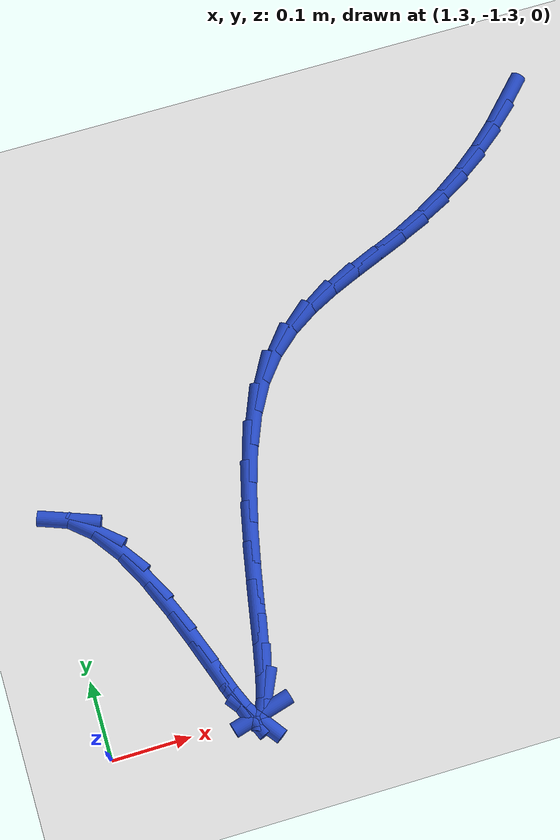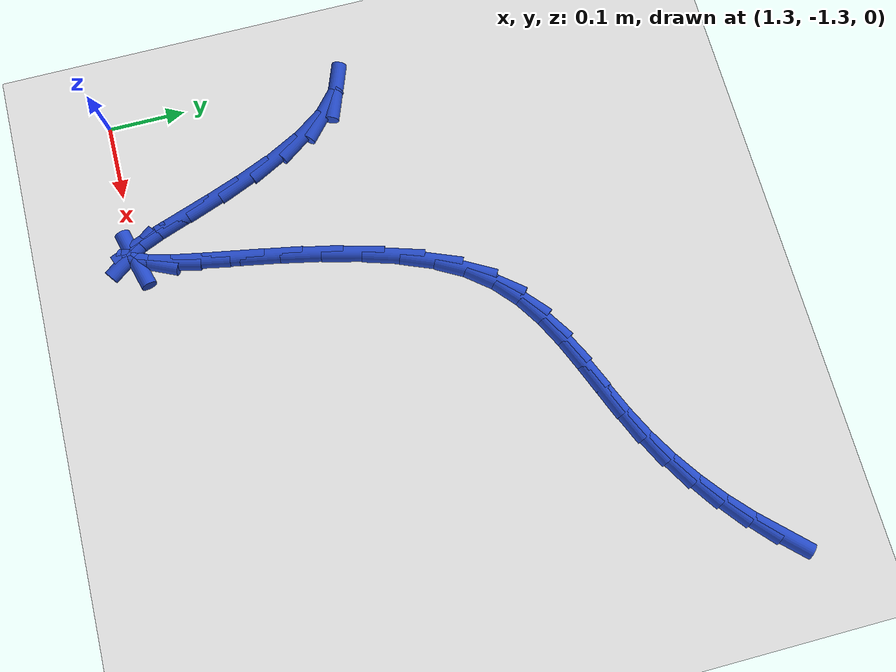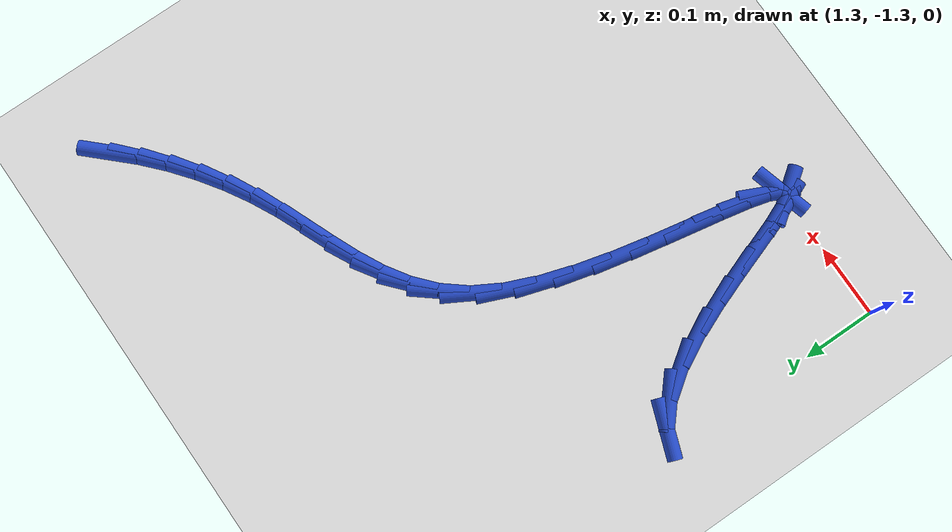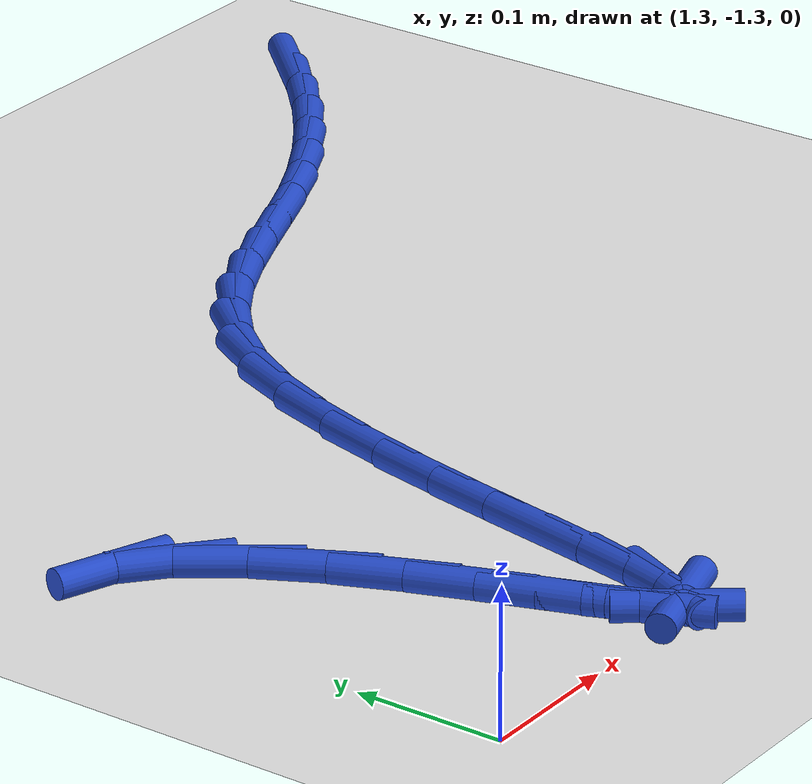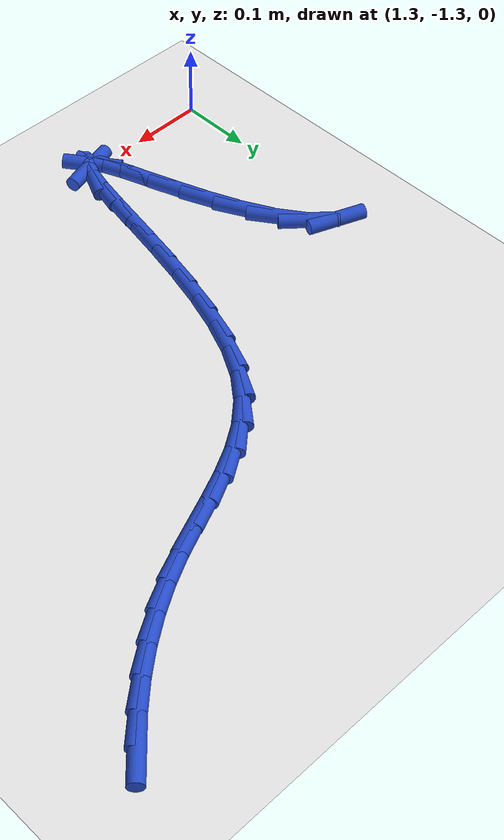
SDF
<sdf version="1.6">
 <world name="default">
  <model name="ground_plane">
   <static>1</static>
   <link name="link">
    <collision name="collision">
     <geometry><plane><normal>0 0 1</normal><size>100 100</size></plane></geometry>
     <surface><friction><ode><mu>100</mu><mu2>50</mu2></ode></friction></surface>
    </collision>
    <visual name="visual">
     <cast_shadows>0</cast_shadows>
     <geometry><plane><normal>0 0 1</normal><size>100 100</size></plane></geometry>
     <material>
      <script><uri>file://media/materials/scripts/gazebo.material</uri><name>Gazebo/WhiteGlow</name></script>
     </material>
    </visual>
   </link>
  </model>
  <model name="line">
   <link name="link_116">
    <pose>2.0248232513057633 -0.6163262676220824 0.01 0 1.57 0.8072728085391252</pose>
    <collision name="collision">
     <geometry><cylinder><radius>0.01</radius><length>0.08</length></cylinder></geometry>
    </collision>
    <visual name="visual">
     <material>
      <script><name>Gazebo/Blue</name><uri>file://media/materials/scripts/gazebo.material</uri></script>
     </material>
     <geometry><cylinder><radius>0.01</radius><length>0.08</length></cylinder></geometry>
    </visual>
   </link>
   <link name="link_117">
    <pose>1.9976456402907155 -0.6447196687322809 0.01 0 1.57 0.7372856509941185</pose>
    <collision name="collision">
     <geometry><cylinder><radius>0.01</radius><length>0.08</length></cylinder></geometry>
    </collision>
    <visual name="visual">
     <material>
      <script><name>Gazebo/Blue</name><uri>file://media/materials/scripts/gazebo.material</uri></script>
     </material>
     <geometry><cylinder><radius>0.01</radius><length>0.08</length></cylinder></geometry>
    </visual>
   </link>
   <link name="link_118">
    <pose>1.9684499890216767 -0.6712329530984369 0.01 0 1.57 0.6686808706957793</pose>
    <collision name="collision">
     <geometry><cylinder><radius>0.01</radius><length>0.08</length></cylinder></geometry>
    </collision>
    <visual name="visual">
     <material>
      <script><name>Gazebo/Blue</name><uri>file://media/materials/scripts/gazebo.material</uri></script>
     </material>
     <geometry><cylinder><radius>0.01</radius><length>0.08</length></cylinder></geometry>
    </visual>
   </link>
   <link name="link_119">
    <pose>1.9374724262264473 -0.6957086139333741 0.01 0 1.57 0.6006304167639882</pose>
    <collision name="collision">
     <geometry><cylinder><radius>0.01</radius><length>0.08</length></cylinder></geometry>
    </collision>
    <visual name="visual">
     <material>
      <script><name>Gazebo/Blue</name><uri>file://media/materials/scripts/gazebo.material</uri></script>
     </material>
     <geometry><cylinder><radius>0.01</radius><length>0.08</length></cylinder></geometry>
    </visual>
   </link>
   <link name="link_120">
    <pose>1.904949080632828 -0.7179891444499163 0.01 0 1.57 0.532297631817416</pose>
    <collision name="collision">
     <geometry><cylinder><radius>0.01</radius><length>0.08</length></cylinder></geometry>
    </collision>
    <visual name="visual">
     <material>
      <script><name>Gazebo/Blue</name><uri>file://media/materials/scripts/gazebo.material</uri></script>
     </material>
     <geometry><cylinder><radius>0.01</radius><length>0.08</length></cylinder></geometry>
    </visual>
   </link>
   <link name="link_121">
    <pose>1.8711160809686191 -0.737917037860887 0.01 0 1.57 0.4629197750677036</pose>
    <collision name="collision">
     <geometry><cylinder><radius>0.01</radius><length>0.08</length></cylinder></geometry>
    </collision>
    <visual name="visual">
     <material>
      <script><name>Gazebo/Blue</name><uri>file://media/materials/scripts/gazebo.material</uri></script>
     </material>
     <geometry><cylinder><radius>0.01</radius><length>0.08</length></cylinder></geometry>
    </visual>
   </link>
   <link name="link_122">
    <pose>1.8362104549848741 -0.755338105526008 0.01 0 1.57 0.4045366274769997</pose>
    <collision name="collision">
     <geometry><cylinder><radius>0.01</radius><length>0.08</length></cylinder></geometry>
    </collision>
    <visual name="visual">
     <material>
      <script><name>Gazebo/Blue</name><uri>file://media/materials/scripts/gazebo.material</uri></script>
     </material>
     <geometry><cylinder><radius>0.01</radius><length>0.08</length></cylinder></geometry>
    </visual>
   </link>
   <link name="link_123">
    <pose>1.800600959764194 -0.7705843500920563 0.01 0 1.57 0.3835690337380409</pose>
    <collision name="collision">
     <geometry><cylinder><radius>0.01</radius><length>0.08</length></cylinder></geometry>
    </collision>
    <visual name="visual">
     <material>
      <script><name>Gazebo/Blue</name><uri>file://media/materials/scripts/gazebo.material</uri></script>
     </material>
     <geometry><cylinder><radius>0.01</radius><length>0.08</length></cylinder></geometry>
    </visual>
   </link>
   <link name="link_124">
    <pose>1.7649255683024139 -0.7849814058428425 0.01 0 1.57 0.40404076729949706</pose>
    <collision name="collision">
     <geometry><cylinder><radius>0.01</radius><length>0.08</length></cylinder></geometry>
    </collision>
    <visual name="visual">
     <material>
      <script><name>Gazebo/Blue</name><uri>file://media/materials/scripts/gazebo.material</uri></script>
     </material>
     <geometry><cylinder><radius>0.01</radius><length>0.08</length></cylinder></geometry>
    </visual>
   </link>
   <link name="link_125">
    <pose>1.729855137440006 -0.7999762759217995 0.01 0 1.57 0.467012423566888</pose>
    <collision name="collision">
     <geometry><cylinder><radius>0.01</radius><length>0.08</length></cylinder></geometry>
    </collision>
    <visual name="visual">
     <material>
      <script><name>Gazebo/Blue</name><uri>file://media/materials/scripts/gazebo.material</uri></script>
     </material>
     <geometry><cylinder><radius>0.01</radius><length>0.08</length></cylinder></geometry>
    </visual>
   </link>
   <link name="link_126">
    <pose>1.696060524017444 -0.8170159634723603 0.01 0 1.57 0.5726213227444268</pose>
    <collision name="collision">
     <geometry><cylinder><radius>0.01</radius><length>0.08</length></cylinder></geometry>
    </collision>
    <visual name="visual">
     <material>
      <script><name>Gazebo/Blue</name><uri>file://media/materials/scripts/gazebo.material</uri></script>
     </material>
     <geometry><cylinder><radius>0.01</radius><length>0.08</length></cylinder></geometry>
    </visual>
   </link>
   <link name="link_127">
    <pose>1.6642125848752014 -0.8375474716379576 0.01 0 1.57 0.7167670873736371</pose>
    <collision name="collision">
     <geometry><cylinder><radius>0.01</radius><length>0.08</length></cylinder></geometry>
    </collision>
    <visual name="visual">
     <material>
      <script><name>Gazebo/Blue</name><uri>file://media/materials/scripts/gazebo.material</uri></script>
     </material>
     <geometry><cylinder><radius>0.01</radius><length>0.08</length></cylinder></geometry>
    </visual>
   </link>
   <link name="link_128">
    <pose>1.6349821768537516 -0.8630178035620244 0.01 0 1.57 0.887367236800554</pose>
    <collision name="collision">
     <geometry><cylinder><radius>0.01</radius><length>0.08</length></cylinder></geometry>
    </collision>
    <visual name="visual">
     <material>
      <script><name>Gazebo/Blue</name><uri>file://media/materials/scripts/gazebo.material</uri></script>
     </material>
     <geometry><cylinder><radius>0.01</radius><length>0.08</length></cylinder></geometry>
    </visual>
   </link>
   <link name="link_129">
    <pose>1.609040156793568 -0.8948739623879939 0.01 0 1.57 1.0570691617419898</pose>
    <collision name="collision">
     <geometry><cylinder><radius>0.01</radius><length>0.08</length></cylinder></geometry>
    </collision>
    <visual name="visual">
     <material>
      <script><name>Gazebo/Blue</name><uri>file://media/materials/scripts/gazebo.material</uri></script>
     </material>
     <geometry><cylinder><radius>0.01</radius><length>0.08</length></cylinder></geometry>
    </visual>
   </link>
   <link name="link_130">
    <pose>1.5869080235889084 -0.9340970924774396 0.01 0 1.57 1.1810974545895563</pose>
    <collision name="collision">
     <geometry><cylinder><radius>0.01</radius><length>0.08</length></cylinder></geometry>
    </collision>
    <visual name="visual">
     <material>
      <script><name>Gazebo/Blue</name><uri>file://media/materials/scripts/gazebo.material</uri></script>
     </material>
     <geometry><cylinder><radius>0.01</radius><length>0.08</length></cylinder></geometry>
    </visual>
   </link>
   <link name="link_131">
    <pose>1.5683458148964953 -0.9792932827393228 0.01 0 1.57 1.2650255808919608</pose>
    <collision name="collision">
     <geometry><cylinder><radius>0.01</radius><length>0.08</length></cylinder></geometry>
    </collision>
    <visual name="visual">
     <material>
      <script><name>Gazebo/Blue</name><uri>file://media/materials/scripts/gazebo.material</uri></script>
     </material>
     <geometry><cylinder><radius>0.01</radius><length>0.08</length></cylinder></geometry>
    </visual>
   </link>
   <link name="link_132">
    <pose>1.5528715230830126 -1.028313664433346 0.01 0 1.57 1.3222074726557957</pose>
    <collision name="collision">
     <geometry><cylinder><radius>0.01</radius><length>0.08</length></cylinder></geometry>
    </collision>
    <visual name="visual">
     <material>
      <script><name>Gazebo/Blue</name><uri>file://media/materials/scripts/gazebo.material</uri></script>
     </material>
     <geometry><cylinder><radius>0.01</radius><length>0.08</length></cylinder></geometry>
    </visual>
   </link>
   <link name="link_133">
    <pose>1.5400030400304818 -1.079009055399924 0.01 0 1.57 1.3600248899261325</pose>
    <collision name="collision">
     <geometry><cylinder><radius>0.01</radius><length>0.08</length></cylinder></geometry>
    </collision>
    <visual name="visual">
     <material>
      <script><name>Gazebo/Blue</name><uri>file://media/materials/scripts/gazebo.material</uri></script>
     </material>
     <geometry><cylinder><radius>0.01</radius><length>0.08</length></cylinder></geometry>
    </visual>
   </link>
   <link name="link_134">
    <pose>1.529258257620929 -1.1292302734794752 0.01 0 1.57 1.3818262120867295</pose>
    <collision name="collision">
     <geometry><cylinder><radius>0.01</radius><length>0.08</length></cylinder></geometry>
    </collision>
    <visual name="visual">
     <material>
      <script><name>Gazebo/Blue</name><uri>file://media/materials/scripts/gazebo.material</uri></script>
     </material>
     <geometry><cylinder><radius>0.01</radius><length>0.08</length></cylinder></geometry>
    </visual>
   </link>
   <link name="link_135">
    <pose>1.520155067736375 -1.1768281365124142 0.01 0 1.57 1.3873900094802802</pose>
    <collision name="collision">
     <geometry><cylinder><radius>0.01</radius><length>0.08</length></cylinder></geometry>
    </collision>
    <visual name="visual">
     <material>
      <script><name>Gazebo/Blue</name><uri>file://media/materials/scripts/gazebo.material</uri></script>
     </material>
     <geometry><cylinder><radius>0.01</radius><length>0.08</length></cylinder></geometry>
    </visual>
   </link>
   <link name="link_136">
    <pose>1.5122113622588451 -1.2196534623391584 0.01 0 1.57 1.371109147193002</pose>
    <collision name="collision">
     <geometry><cylinder><radius>0.01</radius><length>0.08</length></cylinder></geometry>
    </collision>
    <visual name="visual">
     <material>
      <script><name>Gazebo/Blue</name><uri>file://media/materials/scripts/gazebo.material</uri></script>
     </material>
     <geometry><cylinder><radius>0.01</radius><length>0.08</length></cylinder></geometry>
    </visual>
   </link>
   <link name="link_137">
    <pose>1.5049450330703618 -1.2555570688001234 0.01 0 1.57 1.3131302739250528</pose>
    <collision name="collision">
     <geometry><cylinder><radius>0.01</radius><length>0.08</length></cylinder></geometry>
    </collision>
    <visual name="visual">
     <material>
      <script><name>Gazebo/Blue</name><uri>file://media/materials/scripts/gazebo.material</uri></script>
     </material>
     <geometry><cylinder><radius>0.01</radius><length>0.08</length></cylinder></geometry>
    </visual>
   </link>
   <link name="link_138">
    <pose>1.4978739720529488 -1.2823897737357266 0.01 0 1.57 1.1303883448486656</pose>
    <collision name="collision">
     <geometry><cylinder><radius>0.01</radius><length>0.08</length></cylinder></geometry>
    </collision>
    <visual name="visual">
     <material>
      <script><name>Gazebo/Blue</name><uri>file://media/materials/scripts/gazebo.material</uri></script>
     </material>
     <geometry><cylinder><radius>0.01</radius><length>0.08</length></cylinder></geometry>
    </visual>
   </link>
   <link name="link_139">
    <pose>1.4905160710886303 -1.2980023949863841 0.01 0 1.57 0.2693351200532938</pose>
    <collision name="collision">
     <geometry><cylinder><radius>0.01</radius><length>0.08</length></cylinder></geometry>
    </collision>
    <visual name="visual">
     <material>
      <script><name>Gazebo/Blue</name><uri>file://media/materials/scripts/gazebo.material</uri></script>
     </material>
     <geometry><cylinder><radius>0.01</radius><length>0.08</length></cylinder></geometry>
    </visual>
   </link>
   <link name="link_140">
    <pose>1.482389222059429 -1.3002457503925122 0.01 0 1.57 -0.9350906011270425</pose>
    <collision name="collision">
     <geometry><cylinder><radius>0.01</radius><length>0.08</length></cylinder></geometry>
    </collision>
    <visual name="visual">
     <material>
      <script><name>Gazebo/Blue</name><uri>file://media/materials/scripts/gazebo.material</uri></script>
     </material>
     <geometry><cylinder><radius>0.01</radius><length>0.08</length></cylinder></geometry>
    </visual>
   </link>
   <link name="link_141">
    <pose>1.4730427311029943 -1.287579245148345 0.01 0 1.57 -1.1699617377970897</pose>
    <collision name="collision">
     <geometry><cylinder><radius>0.01</radius><length>0.08</length></cylinder></geometry>
    </collision>
    <visual name="visual">
     <material>
      <script><name>Gazebo/Blue</name><uri>file://media/materials/scripts/gazebo.material</uri></script>
     </material>
     <geometry><cylinder><radius>0.01</radius><length>0.08</length></cylinder></geometry>
    </visual>
   </link>
   <link name="link_142">
    <pose>1.462209304302271 -1.2620152856309454 0.01 0 1.57 -1.2287066184222843</pose>
    <collision name="collision">
     <geometry><cylinder><radius>0.01</radius><length>0.08</length></cylinder></geometry>
    </collision>
    <visual name="visual">
     <material>
      <script><name>Gazebo/Blue</name><uri>file://media/materials/scripts/gazebo.material</uri></script>
     </material>
     <geometry><cylinder><radius>0.01</radius><length>0.08</length></cylinder></geometry>
    </visual>
   </link>
   <link name="link_143">
    <pose>1.4496880142089732 -1.2268519936610904 0.01 0 1.57 -1.2363140466737716</pose>
    <collision name="collision">
     <geometry><cylinder><radius>0.01</radius><length>0.08</length></cylinder></geometry>
    </collision>
    <visual name="visual">
     <material>
      <script><name>Gazebo/Blue</name><uri>file://media/materials/scripts/gazebo.material</uri></script>
     </material>
     <geometry><cylinder><radius>0.01</radius><length>0.08</length></cylinder></geometry>
    </visual>
   </link>
   <link name="link_144">
    <pose>1.4352780247469807 -1.185389261209537 0.01 0 1.57 -1.2154576631346756</pose>
    <collision name="collision">
     <geometry><cylinder><radius>0.01</radius><length>0.08</length></cylinder></geometry>
    </collision>
    <visual name="visual">
     <material>
      <script><name>Gazebo/Blue</name><uri>file://media/materials/scripts/gazebo.material</uri></script>
     </material>
     <geometry><cylinder><radius>0.01</radius><length>0.08</length></cylinder></geometry>
    </visual>
   </link>
   <link name="link_145">
    <pose>1.4187784998401731 -1.1409269802470428 0.01 0 1.57 -1.168521576953047</pose>
    <collision name="collision">
     <geometry><cylinder><radius>0.01</radius><length>0.08</length></cylinder></geometry>
    </collision>
    <visual name="visual">
     <material>
      <script><name>Gazebo/Blue</name><uri>file://media/materials/scripts/gazebo.material</uri></script>
     </material>
     <geometry><cylinder><radius>0.01</radius><length>0.08</length></cylinder></geometry>
    </visual>
   </link>
   <link name="link_146">
    <pose>1.399988603412429 -1.096765042744365 0.01 0 1.57 -1.0876158711674133</pose>
    <collision name="collision">
     <geometry><cylinder><radius>0.01</radius><length>0.08</length></cylinder></geometry>
    </collision>
    <visual name="visual">
     <material>
      <script><name>Gazebo/Blue</name><uri>file://media/materials/scripts/gazebo.material</uri></script>
     </material>
     <geometry><cylinder><radius>0.01</radius><length>0.08</length></cylinder></geometry>
    </visual>
   </link>
   <link name="link_147">
    <pose>1.3787074993876287 -1.056203340672262 0.01 0 1.57 -0.9519416190509123</pose>
    <collision name="collision">
     <geometry><cylinder><radius>0.01</radius><length>0.08</length></cylinder></geometry>
    </collision>
    <visual name="visual">
     <material>
      <script><name>Gazebo/Blue</name><uri>file://media/materials/scripts/gazebo.material</uri></script>
     </material>
     <geometry><cylinder><radius>0.01</radius><length>0.08</length></cylinder></geometry>
    </visual>
   </link>
   <link name="link_148">
    <pose>1.3547343516896513 -1.0225417660014906 0.01 0 1.57 -0.7178780747043926</pose>
    <collision name="collision">
     <geometry><cylinder><radius>0.01</radius><length>0.08</length></cylinder></geometry>
    </collision>
    <visual name="visual">
     <material>
      <script><name>Gazebo/Blue</name><uri>file://media/materials/scripts/gazebo.material</uri></script>
     </material>
     <geometry><cylinder><radius>0.01</radius><length>0.08</length></cylinder></geometry>
    </visual>
   </link>
   <link name="link_149">
    <pose>1.3278684386429414 -0.999079209199687 0.01 0 1.57 -0.3586945567281097</pose>
    <collision name="collision">
     <geometry><cylinder><radius>0.01</radius><length>0.08</length></cylinder></geometry>
    </collision>
    <visual name="visual">
     <material>
      <script><name>Gazebo/Blue</name><uri>file://media/materials/scripts/gazebo.material</uri></script>
     </material>
     <geometry><cylinder><radius>0.01</radius><length>0.08</length></cylinder></geometry>
    </visual>
   </link>
  </model>
 </world>
</sdf>
